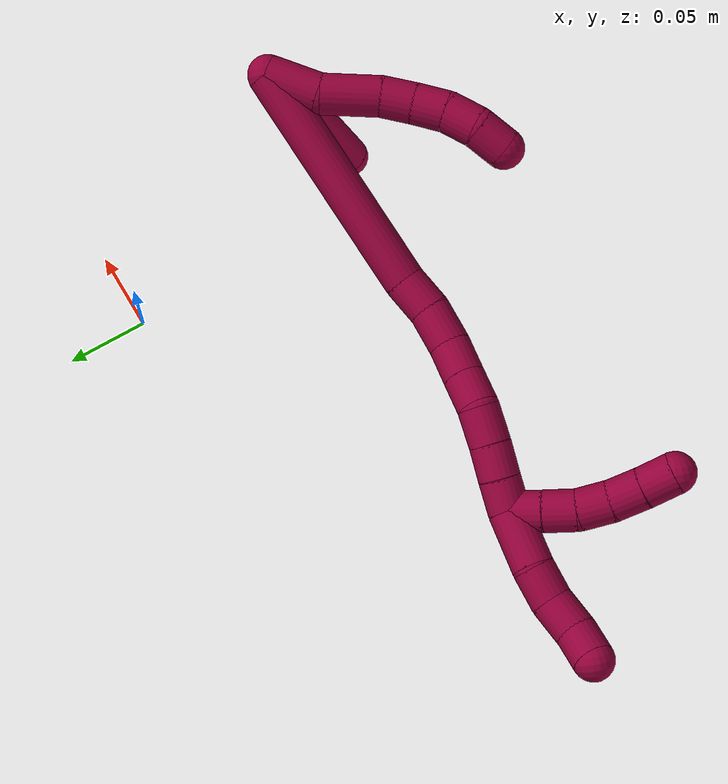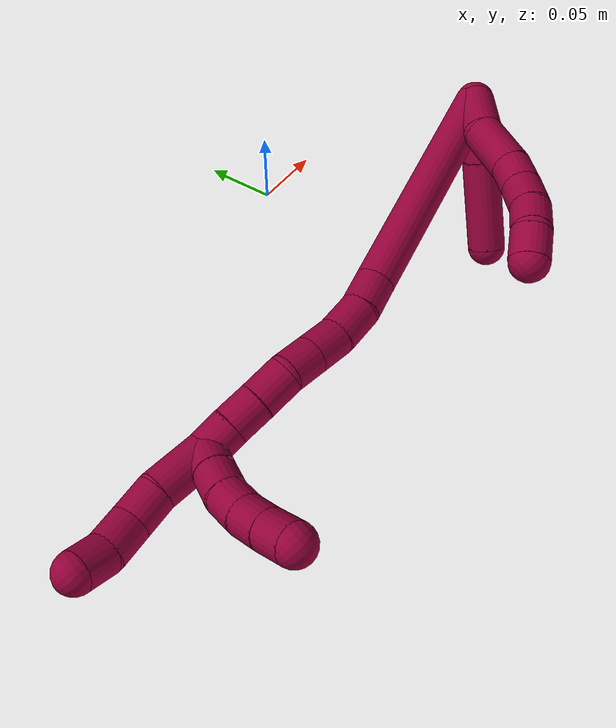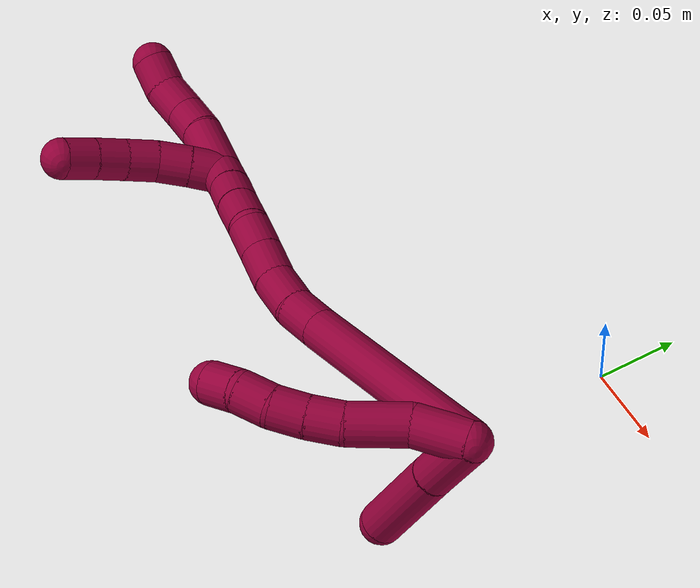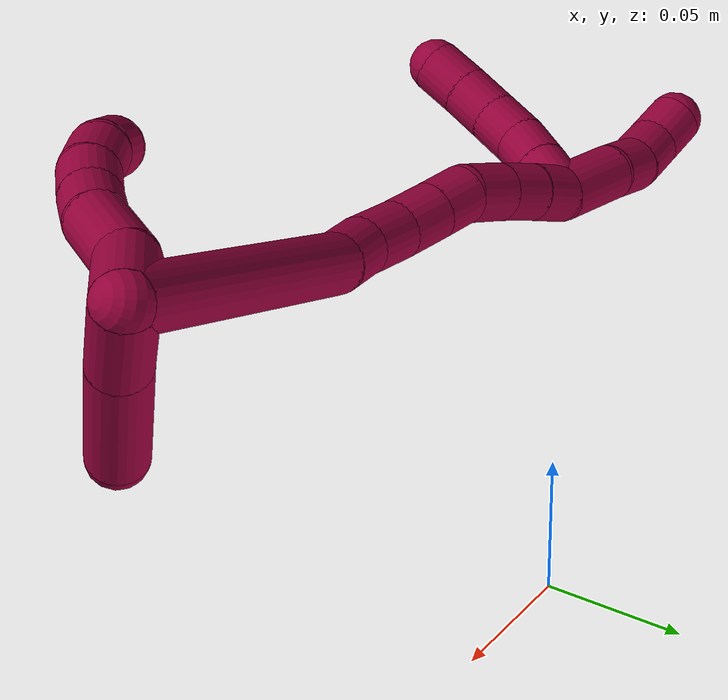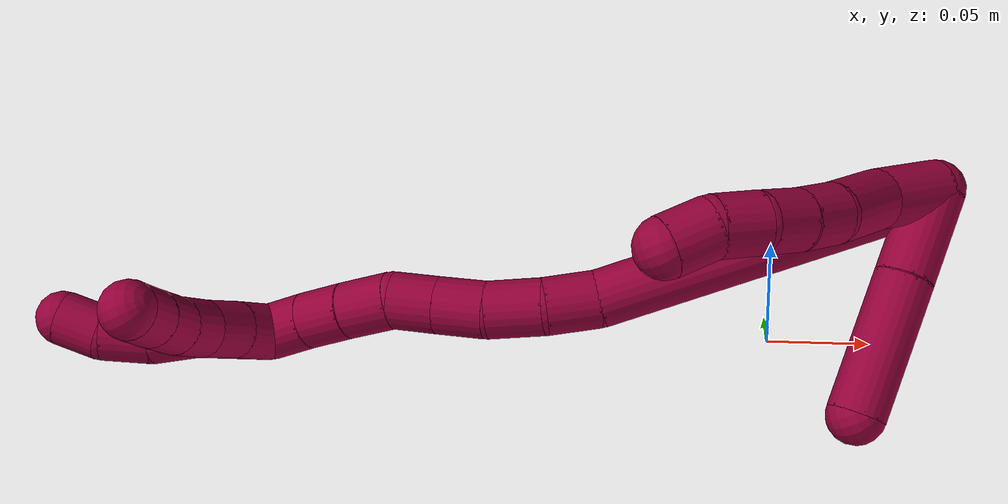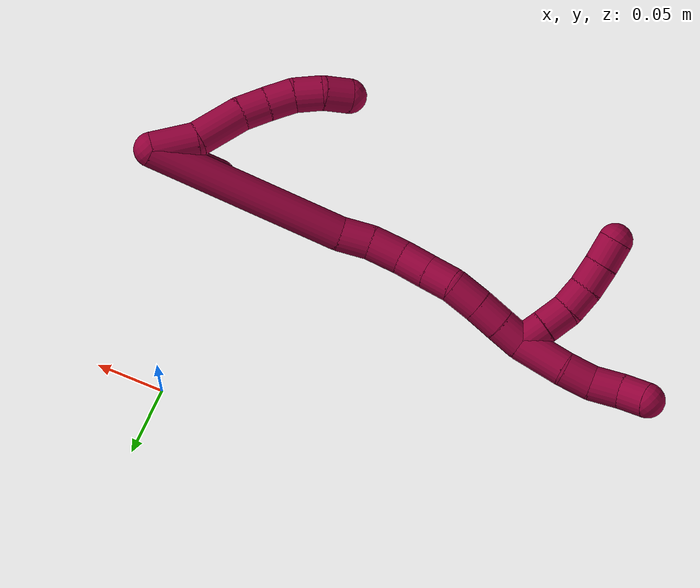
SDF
<sdf version="1.7">
 <world name="default">
  <model name="8">
   <static>0</static>
   <link name="8">
    <collision name="collision-cylinder-e_1_2_8">
     <pose>-0.011677 0.008012 0.008347 -0.764918 -0.790027 0.332339</pose>
     <geometry><cylinder><radius>0.0125</radius><length>0.032877</length></cylinder></geometry>
     <surface>
      <friction><ode><mu>1.16</mu><mu2>1.16</mu2><slip1>0</slip1><slip2>0</slip2></ode></friction>
      <contact><ode><kp>1e+06</kp><kd>1</kd><max_vel>0</max_vel><min_depth>0.001</min_depth></ode></contact>
     </surface>
    </collision>
    <visual name="visual-cylinder-e_1_2_8">
     <pose>-0.011677 0.008012 0.008347 -0.764918 -0.790027 0.332339</pose>
     <geometry><cylinder><radius>0.0125</radius><length>0.032877</length></cylinder></geometry>
     <material><ambient>0.584314 0 0.227451 1</ambient></material>
    </visual>
    <collision name="collision-cylinder-e_2_8_9">
     <pose>-0.036307 0.028123 0.020817 -1.24234 -0.79199 0.581467</pose>
     <geometry><cylinder><radius>0.0125</radius><length>0.036396</length></cylinder></geometry>
     <surface>
      <friction><ode><mu>1.16</mu><mu2>1.16</mu2><slip1>0</slip1><slip2>0</slip2></ode></friction>
      <contact><ode><kp>1e+06</kp><kd>1</kd><max_vel>0</max_vel><min_depth>0.001</min_depth></ode></contact>
     </surface>
    </collision>
    <visual name="visual-cylinder-e_2_8_9">
     <pose>-0.036307 0.028123 0.020817 -1.24234 -0.79199 0.581467</pose>
     <geometry><cylinder><radius>0.0125</radius><length>0.036396</length></cylinder></geometry>
     <material><ambient>0.584314 0 0.227451 1</ambient></material>
    </visual>
    <collision name="collision-cylinder-e_3_9_10">
     <pose>-0.056697 0.045825 0.028883 -0.957678 -0.826406 0.447599</pose>
     <geometry><cylinder><radius>0.0125</radius><length>0.020223</length></cylinder></geometry>
     <surface>
      <friction><ode><mu>1.16</mu><mu2>1.16</mu2><slip1>0</slip1><slip2>0</slip2></ode></friction>
      <contact><ode><kp>1e+06</kp><kd>1</kd><max_vel>0</max_vel><min_depth>0.001</min_depth></ode></contact>
     </surface>
    </collision>
    <visual name="visual-cylinder-e_3_9_10">
     <pose>-0.056697 0.045825 0.028883 -0.957678 -0.826406 0.447599</pose>
     <geometry><cylinder><radius>0.0125</radius><length>0.020223</length></cylinder></geometry>
     <material><ambient>0.584314 0 0.227451 1</ambient></material>
    </visual>
    <collision name="collision-cylinder-e_4_10_11">
     <pose>-0.071959 0.056233 0.037096 -0.84408 -0.883062 0.418256</pose>
     <geometry><cylinder><radius>0.0125</radius><length>0.020256</length></cylinder></geometry>
     <surface>
      <friction><ode><mu>1.16</mu><mu2>1.16</mu2><slip1>0</slip1><slip2>0</slip2></ode></friction>
      <contact><ode><kp>1e+06</kp><kd>1</kd><max_vel>0</max_vel><min_depth>0.001</min_depth></ode></contact>
     </surface>
    </collision>
    <visual name="visual-cylinder-e_4_10_11">
     <pose>-0.071959 0.056233 0.037096 -0.84408 -0.883062 0.418256</pose>
     <geometry><cylinder><radius>0.0125</radius><length>0.020256</length></cylinder></geometry>
     <material><ambient>0.584314 0 0.227451 1</ambient></material>
    </visual>
    <collision name="collision-cylinder-e_5_11_12">
     <pose>-0.086881 0.064704 0.047573 -0.533666 -0.777691 0.223058</pose>
     <geometry><cylinder><radius>0.0125</radius><length>0.020229</length></cylinder></geometry>
     <surface>
      <friction><ode><mu>1.16</mu><mu2>1.16</mu2><slip1>0</slip1><slip2>0</slip2></ode></friction>
      <contact><ode><kp>1e+06</kp><kd>1</kd><max_vel>0</max_vel><min_depth>0.001</min_depth></ode></contact>
     </surface>
    </collision>
    <visual name="visual-cylinder-e_5_11_12">
     <pose>-0.086881 0.064704 0.047573 -0.533666 -0.777691 0.223058</pose>
     <geometry><cylinder><radius>0.0125</radius><length>0.020229</length></cylinder></geometry>
     <material><ambient>0.584314 0 0.227451 1</ambient></material>
    </visual>
    <collision name="collision-cylinder-e_6_12_6">
     <pose>-0.098391 0.073328 0.06127 -0.584597 -0.456536 0.139589</pose>
     <geometry><cylinder><radius>0.0125</radius><length>0.02002</length></cylinder></geometry>
     <surface>
      <friction><ode><mu>1.16</mu><mu2>1.16</mu2><slip1>0</slip1><slip2>0</slip2></ode></friction>
      <contact><ode><kp>1e+06</kp><kd>1</kd><max_vel>0</max_vel><min_depth>0.001</min_depth></ode></contact>
     </surface>
    </collision>
    <visual name="visual-cylinder-e_6_12_6">
     <pose>-0.098391 0.073328 0.06127 -0.584597 -0.456536 0.139589</pose>
     <geometry><cylinder><radius>0.0125</radius><length>0.02002</length></cylinder></geometry>
     <material><ambient>0.584314 0 0.227451 1</ambient></material>
    </visual>
    <collision name="collision-cylinder-e_1_2_13">
     <pose>0.004259 0.016374 0.010361 -1.00661 0.216376 -0.119461</pose>
     <geometry><cylinder><radius>0.0125</radius><length>0.039678</length></cylinder></geometry>
     <surface>
      <friction><ode><mu>1.16</mu><mu2>1.16</mu2><slip1>0</slip1><slip2>0</slip2></ode></friction>
      <contact><ode><kp>1e+06</kp><kd>1</kd><max_vel>0</max_vel><min_depth>0.001</min_depth></ode></contact>
     </surface>
    </collision>
    <visual name="visual-cylinder-e_1_2_13">
     <pose>0.004259 0.016374 0.010361 -1.00661 0.216376 -0.119461</pose>
     <geometry><cylinder><radius>0.0125</radius><length>0.039678</length></cylinder></geometry>
     <material><ambient>0.584314 0 0.227451 1</ambient></material>
    </visual>
    <collision name="collision-cylinder-e_2_13_5">
     <pose>0.016115 0.056956 0.037029 -0.978033 0.254592 -0.136002</pose>
     <geometry><cylinder><radius>0.0125</radius><length>0.060322</length></cylinder></geometry>
     <surface>
      <friction><ode><mu>1.16</mu><mu2>1.16</mu2><slip1>0</slip1><slip2>0</slip2></ode></friction>
      <contact><ode><kp>1e+06</kp><kd>1</kd><max_vel>0</max_vel><min_depth>0.001</min_depth></ode></contact>
     </surface>
    </collision>
    <visual name="visual-cylinder-e_2_13_5">
     <pose>0.016115 0.056956 0.037029 -0.978033 0.254592 -0.136002</pose>
     <geometry><cylinder><radius>0.0125</radius><length>0.060322</length></cylinder></geometry>
     <material><ambient>0.584314 0 0.227451 1</ambient></material>
    </visual>
    <collision name="collision-cylinder-e_1_2_14">
     <pose>-0.022773 0.017297 0.067547 -0.250681 -0.315677 0.040104</pose>
     <geometry><cylinder><radius>0.0125</radius><length>0.146703</length></cylinder></geometry>
     <surface>
      <friction><ode><mu>1.16</mu><mu2>1.16</mu2><slip1>0</slip1><slip2>0</slip2></ode></friction>
      <contact><ode><kp>1e+06</kp><kd>1</kd><max_vel>0</max_vel><min_depth>0.001</min_depth></ode></contact>
     </surface>
    </collision>
    <visual name="visual-cylinder-e_1_2_14">
     <pose>-0.022773 0.017297 0.067547 -0.250681 -0.315677 0.040104</pose>
     <geometry><cylinder><radius>0.0125</radius><length>0.146703</length></cylinder></geometry>
     <material><ambient>0.584314 0 0.227451 1</ambient></material>
    </visual>
    <collision name="collision-cylinder-e_2_14_15">
     <pose>-0.051321 0.036707 0.14488 -0.212696 -0.523275 0.057155</pose>
     <geometry><cylinder><radius>0.0125</radius><length>0.023115</length></cylinder></geometry>
     <surface>
      <friction><ode><mu>1.16</mu><mu2>1.16</mu2><slip1>0</slip1><slip2>0</slip2></ode></friction>
      <contact><ode><kp>1e+06</kp><kd>1</kd><max_vel>0</max_vel><min_depth>0.001</min_depth></ode></contact>
     </surface>
    </collision>
    <visual name="visual-cylinder-e_2_14_15">
     <pose>-0.051321 0.036707 0.14488 -0.212696 -0.523275 0.057155</pose>
     <geometry><cylinder><radius>0.0125</radius><length>0.023115</length></cylinder></geometry>
     <material><ambient>0.584314 0 0.227451 1</ambient></material>
    </visual>
    <collision name="collision-cylinder-e_3_15_16">
     <pose>-0.062317 0.03884 0.165839 -0.001767 -0.437071 0.000392</pose>
     <geometry><cylinder><radius>0.0125</radius><length>0.024664</length></cylinder></geometry>
     <surface>
      <friction><ode><mu>1.16</mu><mu2>1.16</mu2><slip1>0</slip1><slip2>0</slip2></ode></friction>
      <contact><ode><kp>1e+06</kp><kd>1</kd><max_vel>0</max_vel><min_depth>0.001</min_depth></ode></contact>
     </surface>
    </collision>
    <visual name="visual-cylinder-e_3_15_16">
     <pose>-0.062317 0.03884 0.165839 -0.001767 -0.437071 0.000392</pose>
     <geometry><cylinder><radius>0.0125</radius><length>0.024664</length></cylinder></geometry>
     <material><ambient>0.584314 0 0.227451 1</ambient></material>
    </visual>
    <collision name="collision-cylinder-e_4_16_17">
     <pose>-0.072419 0.036958 0.186598 0.195851 -0.463316 -0.04634</pose>
     <geometry><cylinder><radius>0.0125</radius><length>0.021849</length></cylinder></geometry>
     <surface>
      <friction><ode><mu>1.16</mu><mu2>1.16</mu2><slip1>0</slip1><slip2>0</slip2></ode></friction>
      <contact><ode><kp>1e+06</kp><kd>1</kd><max_vel>0</max_vel><min_depth>0.001</min_depth></ode></contact>
     </surface>
    </collision>
    <visual name="visual-cylinder-e_4_16_17">
     <pose>-0.072419 0.036958 0.186598 0.195851 -0.463316 -0.04634</pose>
     <geometry><cylinder><radius>0.0125</radius><length>0.021849</length></cylinder></geometry>
     <material><ambient>0.584314 0 0.227451 1</ambient></material>
    </visual>
    <collision name="collision-cylinder-e_5_17_18">
     <pose>-0.081998 0.033266 0.205088 0.198312 -0.477187 -0.048384</pose>
     <geometry><cylinder><radius>0.0125</radius><length>0.020449</length></cylinder></geometry>
     <surface>
      <friction><ode><mu>1.16</mu><mu2>1.16</mu2><slip1>0</slip1><slip2>0</slip2></ode></friction>
      <contact><ode><kp>1e+06</kp><kd>1</kd><max_vel>0</max_vel><min_depth>0.001</min_depth></ode></contact>
     </surface>
    </collision>
    <visual name="visual-cylinder-e_5_17_18">
     <pose>-0.081998 0.033266 0.205088 0.198312 -0.477187 -0.048384</pose>
     <geometry><cylinder><radius>0.0125</radius><length>0.020449</length></cylinder></geometry>
     <material><ambient>0.584314 0 0.227451 1</ambient></material>
    </visual>
    <collision name="collision-cylinder-e_6_18_19">
     <pose>-0.088798 0.031234 0.225133 0.021859 -0.186688 -0.002046</pose>
     <geometry><cylinder><radius>0.0125</radius><length>0.022681</length></cylinder></geometry>
     <surface>
      <friction><ode><mu>1.16</mu><mu2>1.16</mu2><slip1>0</slip1><slip2>0</slip2></ode></friction>
      <contact><ode><kp>1e+06</kp><kd>1</kd><max_vel>0</max_vel><min_depth>0.001</min_depth></ode></contact>
     </surface>
    </collision>
    <visual name="visual-cylinder-e_6_18_19">
     <pose>-0.088798 0.031234 0.225133 0.021859 -0.186688 -0.002046</pose>
     <geometry><cylinder><radius>0.0125</radius><length>0.022681</length></cylinder></geometry>
     <material><ambient>0.584314 0 0.227451 1</ambient></material>
    </visual>
    <collision name="collision-cylinder-e_7_19_20">
     <pose>-0.092318 0.030654 0.24642 0.033097 -0.138499 -0.002296</pose>
     <geometry><cylinder><radius>0.0125</radius><length>0.020498</length></cylinder></geometry>
     <surface>
      <friction><ode><mu>1.16</mu><mu2>1.16</mu2><slip1>0</slip1><slip2>0</slip2></ode></friction>
      <contact><ode><kp>1e+06</kp><kd>1</kd><max_vel>0</max_vel><min_depth>0.001</min_depth></ode></contact>
     </surface>
    </collision>
    <visual name="visual-cylinder-e_7_19_20">
     <pose>-0.092318 0.030654 0.24642 0.033097 -0.138499 -0.002296</pose>
     <geometry><cylinder><radius>0.0125</radius><length>0.020498</length></cylinder></geometry>
     <material><ambient>0.584314 0 0.227451 1</ambient></material>
    </visual>
    <collision name="collision-cylinder-e_8_20_1">
     <pose>-0.094985 0.030416 0.266506 -0.009849 -0.125291 0.000618</pose>
     <geometry><cylinder><radius>0.0125</radius><length>0.02004</length></cylinder></geometry>
     <surface>
      <friction><ode><mu>1.16</mu><mu2>1.16</mu2><slip1>0</slip1><slip2>0</slip2></ode></friction>
      <contact><ode><kp>1e+06</kp><kd>1</kd><max_vel>0</max_vel><min_depth>0.001</min_depth></ode></contact>
     </surface>
    </collision>
    <visual name="visual-cylinder-e_8_20_1">
     <pose>-0.094985 0.030416 0.266506 -0.009849 -0.125291 0.000618</pose>
     <geometry><cylinder><radius>0.0125</radius><length>0.02004</length></cylinder></geometry>
     <material><ambient>0.584314 0 0.227451 1</ambient></material>
    </visual>
    <collision name="collision-cylinder-e_1_1_21">
     <pose>-0.103155 0.028237 0.292636 0.139733 -0.400293 -0.028391</pose>
     <geometry><cylinder><radius>0.0125</radius><length>0.035503</length></cylinder></geometry>
     <surface>
      <friction><ode><mu>1.16</mu><mu2>1.16</mu2><slip1>0</slip1><slip2>0</slip2></ode></friction>
      <contact><ode><kp>1e+06</kp><kd>1</kd><max_vel>0</max_vel><min_depth>0.001</min_depth></ode></contact>
     </surface>
    </collision>
    <visual name="visual-cylinder-e_1_1_21">
     <pose>-0.103155 0.028237 0.292636 0.139733 -0.400293 -0.028391</pose>
     <geometry><cylinder><radius>0.0125</radius><length>0.035503</length></cylinder></geometry>
     <material><ambient>0.584314 0 0.227451 1</ambient></material>
    </visual>
    <collision name="collision-cylinder-e_2_21_22">
     <pose>-0.114039 0.026534 0.318911 -0.056803 -0.374079 0.010753</pose>
     <geometry><cylinder><radius>0.0125</radius><length>0.021707</length></cylinder></geometry>
     <surface>
      <friction><ode><mu>1.16</mu><mu2>1.16</mu2><slip1>0</slip1><slip2>0</slip2></ode></friction>
      <contact><ode><kp>1e+06</kp><kd>1</kd><max_vel>0</max_vel><min_depth>0.001</min_depth></ode></contact>
     </surface>
    </collision>
    <visual name="visual-cylinder-e_2_21_22">
     <pose>-0.114039 0.026534 0.318911 -0.056803 -0.374079 0.010753</pose>
     <geometry><cylinder><radius>0.0125</radius><length>0.021707</length></cylinder></geometry>
     <material><ambient>0.584314 0 0.227451 1</ambient></material>
    </visual>
    <collision name="collision-cylinder-e_3_22_23">
     <pose>-0.124799 0.02713 0.338028 -0.002538 -0.645072 0.000848</pose>
     <geometry><cylinder><radius>0.0125</radius><length>0.022601</length></cylinder></geometry>
     <surface>
      <friction><ode><mu>1.16</mu><mu2>1.16</mu2><slip1>0</slip1><slip2>0</slip2></ode></friction>
      <contact><ode><kp>1e+06</kp><kd>1</kd><max_vel>0</max_vel><min_depth>0.001</min_depth></ode></contact>
     </surface>
    </collision>
    <visual name="visual-cylinder-e_3_22_23">
     <pose>-0.124799 0.02713 0.338028 -0.002538 -0.645072 0.000848</pose>
     <geometry><cylinder><radius>0.0125</radius><length>0.022601</length></cylinder></geometry>
     <material><ambient>0.584314 0 0.227451 1</ambient></material>
    </visual>
    <collision name="collision-cylinder-e_4_23_4">
     <pose>-0.138131 0.024363 0.354225 0.371273 -0.704491 -0.137842</pose>
     <geometry><cylinder><radius>0.0125</radius><length>0.020188</length></cylinder></geometry>
     <surface>
      <friction><ode><mu>1.16</mu><mu2>1.16</mu2><slip1>0</slip1><slip2>0</slip2></ode></friction>
      <contact><ode><kp>1e+06</kp><kd>1</kd><max_vel>0</max_vel><min_depth>0.001</min_depth></ode></contact>
     </surface>
    </collision>
    <visual name="visual-cylinder-e_4_23_4">
     <pose>-0.138131 0.024363 0.354225 0.371273 -0.704491 -0.137842</pose>
     <geometry><cylinder><radius>0.0125</radius><length>0.020188</length></cylinder></geometry>
     <material><ambient>0.584314 0 0.227451 1</ambient></material>
    </visual>
    <collision name="collision-cylinder-e_1_1_24">
     <pose>-0.104928 0.035276 0.277784 -1.29696 -1.05335 0.830082</pose>
     <geometry><cylinder><radius>0.0125</radius><length>0.02</length></cylinder></geometry>
     <surface>
      <friction><ode><mu>1.16</mu><mu2>1.16</mu2><slip1>0</slip1><slip2>0</slip2></ode></friction>
      <contact><ode><kp>1e+06</kp><kd>1</kd><max_vel>0</max_vel><min_depth>0.001</min_depth></ode></contact>
     </surface>
    </collision>
    <visual name="visual-cylinder-e_1_1_24">
     <pose>-0.104928 0.035276 0.277784 -1.29696 -1.05335 0.830082</pose>
     <geometry><cylinder><radius>0.0125</radius><length>0.02</length></cylinder></geometry>
     <material><ambient>0.584314 0 0.227451 1</ambient></material>
    </visual>
    <collision name="collision-cylinder-e_2_24_25">
     <pose>-0.122134 0.045157 0.280258 -1.35233 -1.0189 0.84274</pose>
     <geometry><cylinder><radius>0.0125</radius><length>0.02</length></cylinder></geometry>
     <surface>
      <friction><ode><mu>1.16</mu><mu2>1.16</mu2><slip1>0</slip1><slip2>0</slip2></ode></friction>
      <contact><ode><kp>1e+06</kp><kd>1</kd><max_vel>0</max_vel><min_depth>0.001</min_depth></ode></contact>
     </surface>
    </collision>
    <visual name="visual-cylinder-e_2_24_25">
     <pose>-0.122134 0.045157 0.280258 -1.35233 -1.0189 0.84274</pose>
     <geometry><cylinder><radius>0.0125</radius><length>0.02</length></cylinder></geometry>
     <material><ambient>0.584314 0 0.227451 1</ambient></material>
    </visual>
    <collision name="collision-cylinder-e_3_25_26">
     <pose>-0.139005 0.055669 0.280341 -1.76377 -0.988995 1.15939</pose>
     <geometry><cylinder><radius>0.0125</radius><length>0.02</length></cylinder></geometry>
     <surface>
      <friction><ode><mu>1.16</mu><mu2>1.16</mu2><slip1>0</slip1><slip2>0</slip2></ode></friction>
      <contact><ode><kp>1e+06</kp><kd>1</kd><max_vel>0</max_vel><min_depth>0.001</min_depth></ode></contact>
     </surface>
    </collision>
    <visual name="visual-cylinder-e_3_25_26">
     <pose>-0.139005 0.055669 0.280341 -1.76377 -0.988995 1.15939</pose>
     <geometry><cylinder><radius>0.0125</radius><length>0.02</length></cylinder></geometry>
     <material><ambient>0.584314 0 0.227451 1</ambient></material>
    </visual>
    <collision name="collision-cylinder-e_4_26_27">
     <pose>-0.155775 0.065893 0.276872 -2.03436 -1.00019 1.44786</pose>
     <geometry><cylinder><radius>0.0125</radius><length>0.02</length></cylinder></geometry>
     <surface>
      <friction><ode><mu>1.16</mu><mu2>1.16</mu2><slip1>0</slip1><slip2>0</slip2></ode></friction>
      <contact><ode><kp>1e+06</kp><kd>1</kd><max_vel>0</max_vel><min_depth>0.001</min_depth></ode></contact>
     </surface>
    </collision>
    <visual name="visual-cylinder-e_4_26_27">
     <pose>-0.155775 0.065893 0.276872 -2.03436 -1.00019 1.44786</pose>
     <geometry><cylinder><radius>0.0125</radius><length>0.02</length></cylinder></geometry>
     <material><ambient>0.584314 0 0.227451 1</ambient></material>
    </visual>
    <collision name="collision-cylinder-e_5_27_3">
     <pose>-0.172435 0.075582 0.27155 -2.1101 -0.969114 1.49673</pose>
     <geometry><cylinder><radius>0.0125</radius><length>0.02</length></cylinder></geometry>
     <surface>
      <friction><ode><mu>1.16</mu><mu2>1.16</mu2><slip1>0</slip1><slip2>0</slip2></ode></friction>
      <contact><ode><kp>1e+06</kp><kd>1</kd><max_vel>0</max_vel><min_depth>0.001</min_depth></ode></contact>
     </surface>
    </collision>
    <visual name="visual-cylinder-e_5_27_3">
     <pose>-0.172435 0.075582 0.27155 -2.1101 -0.969114 1.49673</pose>
     <geometry><cylinder><radius>0.0125</radius><length>0.02</length></cylinder></geometry>
     <material><ambient>0.584314 0 0.227451 1</ambient></material>
    </visual>
    <collision name="collision-sphere-3">
     <pose>-0.180678 0.080439 0.268643 0 -0 0</pose>
     <geometry><sphere><radius>0.0125</radius></sphere></geometry>
     <surface>
      <friction><ode><mu>1.16</mu><mu2>1.16</mu2><slip1>0</slip1><slip2>0</slip2></ode></friction>
      <contact><ode><kp>1e+06</kp><kd>1</kd><max_vel>0</max_vel><min_depth>0.001</min_depth></ode></contact>
     </surface>
    </collision>
    <visual name="visual-sphere-3">
     <pose>-0.180678 0.080439 0.268643 0 -0 0</pose>
     <geometry><sphere><radius>0.0125</radius></sphere></geometry>
     <material><ambient>0.584314 0 0.227451 1</ambient></material>
    </visual>
    <collision name="collision-sphere-27">
     <pose>-0.164191 0.070725 0.274457 0 -0 0</pose>
     <geometry><sphere><radius>0.0125</radius></sphere></geometry>
     <surface>
      <friction><ode><mu>1.16</mu><mu2>1.16</mu2><slip1>0</slip1><slip2>0</slip2></ode></friction>
      <contact><ode><kp>1e+06</kp><kd>1</kd><max_vel>0</max_vel><min_depth>0.001</min_depth></ode></contact>
     </surface>
    </collision>
    <visual name="visual-sphere-27">
     <pose>-0.164191 0.070725 0.274457 0 -0 0</pose>
     <geometry><sphere><radius>0.0125</radius></sphere></geometry>
     <material><ambient>0.584314 0 0.227451 1</ambient></material>
    </visual>
    <collision name="collision-sphere-26">
     <pose>-0.147359 0.061062 0.279287 0 -0 0</pose>
     <geometry><sphere><radius>0.0125</radius></sphere></geometry>
     <surface>
      <friction><ode><mu>1.16</mu><mu2>1.16</mu2><slip1>0</slip1><slip2>0</slip2></ode></friction>
      <contact><ode><kp>1e+06</kp><kd>1</kd><max_vel>0</max_vel><min_depth>0.001</min_depth></ode></contact>
     </surface>
    </collision>
    <visual name="visual-sphere-26">
     <pose>-0.147359 0.061062 0.279287 0 -0 0</pose>
     <geometry><sphere><radius>0.0125</radius></sphere></geometry>
     <material><ambient>0.584314 0 0.227451 1</ambient></material>
    </visual>
    <collision name="collision-sphere-25">
     <pose>-0.13065 0.050275 0.281395 0 -0 0</pose>
     <geometry><sphere><radius>0.0125</radius></sphere></geometry>
     <surface>
      <friction><ode><mu>1.16</mu><mu2>1.16</mu2><slip1>0</slip1><slip2>0</slip2></ode></friction>
      <contact><ode><kp>1e+06</kp><kd>1</kd><max_vel>0</max_vel><min_depth>0.001</min_depth></ode></contact>
     </surface>
    </collision>
    <visual name="visual-sphere-25">
     <pose>-0.13065 0.050275 0.281395 0 -0 0</pose>
     <geometry><sphere><radius>0.0125</radius></sphere></geometry>
     <material><ambient>0.584314 0 0.227451 1</ambient></material>
    </visual>
    <collision name="collision-sphere-24">
     <pose>-0.113619 0.040039 0.279122 0 -0 0</pose>
     <geometry><sphere><radius>0.0125</radius></sphere></geometry>
     <surface>
      <friction><ode><mu>1.16</mu><mu2>1.16</mu2><slip1>0</slip1><slip2>0</slip2></ode></friction>
      <contact><ode><kp>1e+06</kp><kd>1</kd><max_vel>0</max_vel><min_depth>0.001</min_depth></ode></contact>
     </surface>
    </collision>
    <visual name="visual-sphere-24">
     <pose>-0.113619 0.040039 0.279122 0 -0 0</pose>
     <geometry><sphere><radius>0.0125</radius></sphere></geometry>
     <material><ambient>0.584314 0 0.227451 1</ambient></material>
    </visual>
    <collision name="collision-sphere-4">
     <pose>-0.144669 0.021572 0.361392 0 -0 0</pose>
     <geometry><sphere><radius>0.0125</radius></sphere></geometry>
     <surface>
      <friction><ode><mu>1.16</mu><mu2>1.16</mu2><slip1>0</slip1><slip2>0</slip2></ode></friction>
      <contact><ode><kp>1e+06</kp><kd>1</kd><max_vel>0</max_vel><min_depth>0.001</min_depth></ode></contact>
     </surface>
    </collision>
    <visual name="visual-sphere-4">
     <pose>-0.144669 0.021572 0.361392 0 -0 0</pose>
     <geometry><sphere><radius>0.0125</radius></sphere></geometry>
     <material><ambient>0.584314 0 0.227451 1</ambient></material>
    </visual>
    <collision name="collision-sphere-23">
     <pose>-0.131594 0.027153 0.347058 0 -0 0</pose>
     <geometry><sphere><radius>0.0125</radius></sphere></geometry>
     <surface>
      <friction><ode><mu>1.16</mu><mu2>1.16</mu2><slip1>0</slip1><slip2>0</slip2></ode></friction>
      <contact><ode><kp>1e+06</kp><kd>1</kd><max_vel>0</max_vel><min_depth>0.001</min_depth></ode></contact>
     </surface>
    </collision>
    <visual name="visual-sphere-23">
     <pose>-0.131594 0.027153 0.347058 0 -0 0</pose>
     <geometry><sphere><radius>0.0125</radius></sphere></geometry>
     <material><ambient>0.584314 0 0.227451 1</ambient></material>
    </visual>
    <collision name="collision-sphere-22">
     <pose>-0.118005 0.027107 0.328998 0 -0 0</pose>
     <geometry><sphere><radius>0.0125</radius></sphere></geometry>
     <surface>
      <friction><ode><mu>1.16</mu><mu2>1.16</mu2><slip1>0</slip1><slip2>0</slip2></ode></friction>
      <contact><ode><kp>1e+06</kp><kd>1</kd><max_vel>0</max_vel><min_depth>0.001</min_depth></ode></contact>
     </surface>
    </collision>
    <visual name="visual-sphere-22">
     <pose>-0.118005 0.027107 0.328998 0 -0 0</pose>
     <geometry><sphere><radius>0.0125</radius></sphere></geometry>
     <material><ambient>0.584314 0 0.227451 1</ambient></material>
    </visual>
    <collision name="collision-sphere-21">
     <pose>-0.110073 0.02596 0.308825 0 -0 0</pose>
     <geometry><sphere><radius>0.0125</radius></sphere></geometry>
     <surface>
      <friction><ode><mu>1.16</mu><mu2>1.16</mu2><slip1>0</slip1><slip2>0</slip2></ode></friction>
      <contact><ode><kp>1e+06</kp><kd>1</kd><max_vel>0</max_vel><min_depth>0.001</min_depth></ode></contact>
     </surface>
    </collision>
    <visual name="visual-sphere-21">
     <pose>-0.110073 0.02596 0.308825 0 -0 0</pose>
     <geometry><sphere><radius>0.0125</radius></sphere></geometry>
     <material><ambient>0.584314 0 0.227451 1</ambient></material>
    </visual>
    <collision name="collision-sphere-1">
     <pose>-0.096237 0.030514 0.276447 0 -0 0</pose>
     <geometry><sphere><radius>0.0125</radius></sphere></geometry>
     <surface>
      <friction><ode><mu>1.16</mu><mu2>1.16</mu2><slip1>0</slip1><slip2>0</slip2></ode></friction>
      <contact><ode><kp>1e+06</kp><kd>1</kd><max_vel>0</max_vel><min_depth>0.001</min_depth></ode></contact>
     </surface>
    </collision>
    <visual name="visual-sphere-1">
     <pose>-0.096237 0.030514 0.276447 0 -0 0</pose>
     <geometry><sphere><radius>0.0125</radius></sphere></geometry>
     <material><ambient>0.584314 0 0.227451 1</ambient></material>
    </visual>
    <collision name="collision-sphere-12">
     <pose>-0.093978 0.06837 0.053777 0 -0 0</pose>
     <geometry><sphere><radius>0.0125</radius></sphere></geometry>
     <surface>
      <friction><ode><mu>1.16</mu><mu2>1.16</mu2><slip1>0</slip1><slip2>0</slip2></ode></friction>
      <contact><ode><kp>1e+06</kp><kd>1</kd><max_vel>0</max_vel><min_depth>0.001</min_depth></ode></contact>
     </surface>
    </collision>
    <visual name="visual-sphere-12">
     <pose>-0.093978 0.06837 0.053777 0 -0 0</pose>
     <geometry><sphere><radius>0.0125</radius></sphere></geometry>
     <material><ambient>0.584314 0 0.227451 1</ambient></material>
    </visual>
    <collision name="collision-sphere-11">
     <pose>-0.079785 0.061038 0.041368 0 -0 0</pose>
     <geometry><sphere><radius>0.0125</radius></sphere></geometry>
     <surface>
      <friction><ode><mu>1.16</mu><mu2>1.16</mu2><slip1>0</slip1><slip2>0</slip2></ode></friction>
      <contact><ode><kp>1e+06</kp><kd>1</kd><max_vel>0</max_vel><min_depth>0.001</min_depth></ode></contact>
     </surface>
    </collision>
    <visual name="visual-sphere-11">
     <pose>-0.079785 0.061038 0.041368 0 -0 0</pose>
     <geometry><sphere><radius>0.0125</radius></sphere></geometry>
     <material><ambient>0.584314 0 0.227451 1</ambient></material>
    </visual>
    <collision name="collision-sphere-10">
     <pose>-0.064134 0.051428 0.032825 0 -0 0</pose>
     <geometry><sphere><radius>0.0125</radius></sphere></geometry>
     <surface>
      <friction><ode><mu>1.16</mu><mu2>1.16</mu2><slip1>0</slip1><slip2>0</slip2></ode></friction>
      <contact><ode><kp>1e+06</kp><kd>1</kd><max_vel>0</max_vel><min_depth>0.001</min_depth></ode></contact>
     </surface>
    </collision>
    <visual name="visual-sphere-10">
     <pose>-0.064134 0.051428 0.032825 0 -0 0</pose>
     <geometry><sphere><radius>0.0125</radius></sphere></geometry>
     <material><ambient>0.584314 0 0.227451 1</ambient></material>
    </visual>
    <collision name="collision-sphere-9">
     <pose>-0.04926 0.040222 0.024941 0 -0 0</pose>
     <geometry><sphere><radius>0.0125</radius></sphere></geometry>
     <surface>
      <friction><ode><mu>1.16</mu><mu2>1.16</mu2><slip1>0</slip1><slip2>0</slip2></ode></friction>
      <contact><ode><kp>1e+06</kp><kd>1</kd><max_vel>0</max_vel><min_depth>0.001</min_depth></ode></contact>
     </surface>
    </collision>
    <visual name="visual-sphere-9">
     <pose>-0.04926 0.040222 0.024941 0 -0 0</pose>
     <geometry><sphere><radius>0.0125</radius></sphere></geometry>
     <material><ambient>0.584314 0 0.227451 1</ambient></material>
    </visual>
    <collision name="collision-sphere-2">
     <geometry><sphere><radius>0.0125</radius></sphere></geometry>
     <surface>
      <friction><ode><mu>1.16</mu><mu2>1.16</mu2><slip1>0</slip1><slip2>0</slip2></ode></friction>
      <contact><ode><kp>1e+06</kp><kd>1</kd><max_vel>0</max_vel><min_depth>0.001</min_depth></ode></contact>
     </surface>
    </collision>
    <visual name="visual-sphere-2">
     <geometry><sphere><radius>0.0125</radius></sphere></geometry>
     <material><ambient>0.584314 0 0.227451 1</ambient></material>
    </visual>
    <collision name="collision-sphere-19">
     <pose>-0.090903 0.03099 0.236274 0 -0 0</pose>
     <geometry><sphere><radius>0.0125</radius></sphere></geometry>
     <surface>
      <friction><ode><mu>1.16</mu><mu2>1.16</mu2><slip1>0</slip1><slip2>0</slip2></ode></friction>
      <contact><ode><kp>1e+06</kp><kd>1</kd><max_vel>0</max_vel><min_depth>0.001</min_depth></ode></contact>
     </surface>
    </collision>
    <visual name="visual-sphere-19">
     <pose>-0.090903 0.03099 0.236274 0 -0 0</pose>
     <geometry><sphere><radius>0.0125</radius></sphere></geometry>
     <material><ambient>0.584314 0 0.227451 1</ambient></material>
    </visual>
    <collision name="collision-sphere-8">
     <pose>-0.023355 0.016024 0.016694 0 -0 0</pose>
     <geometry><sphere><radius>0.0125</radius></sphere></geometry>
     <surface>
      <friction><ode><mu>1.16</mu><mu2>1.16</mu2><slip1>0</slip1><slip2>0</slip2></ode></friction>
      <contact><ode><kp>1e+06</kp><kd>1</kd><max_vel>0</max_vel><min_depth>0.001</min_depth></ode></contact>
     </surface>
    </collision>
    <visual name="visual-sphere-8">
     <pose>-0.023355 0.016024 0.016694 0 -0 0</pose>
     <geometry><sphere><radius>0.0125</radius></sphere></geometry>
     <material><ambient>0.584314 0 0.227451 1</ambient></material>
    </visual>
    <collision name="collision-sphere-6">
     <pose>-0.102804 0.078287 0.068763 0 -0 0</pose>
     <geometry><sphere><radius>0.0125</radius></sphere></geometry>
     <surface>
      <friction><ode><mu>1.16</mu><mu2>1.16</mu2><slip1>0</slip1><slip2>0</slip2></ode></friction>
      <contact><ode><kp>1e+06</kp><kd>1</kd><max_vel>0</max_vel><min_depth>0.001</min_depth></ode></contact>
     </surface>
    </collision>
    <visual name="visual-sphere-6">
     <pose>-0.102804 0.078287 0.068763 0 -0 0</pose>
     <geometry><sphere><radius>0.0125</radius></sphere></geometry>
     <material><ambient>0.584314 0 0.227451 1</ambient></material>
    </visual>
    <collision name="collision-sphere-13">
     <pose>0.008519 0.032747 0.020722 0 -0 0</pose>
     <geometry><sphere><radius>0.0125</radius></sphere></geometry>
     <surface>
      <friction><ode><mu>1.16</mu><mu2>1.16</mu2><slip1>0</slip1><slip2>0</slip2></ode></friction>
      <contact><ode><kp>1e+06</kp><kd>1</kd><max_vel>0</max_vel><min_depth>0.001</min_depth></ode></contact>
     </surface>
    </collision>
    <visual name="visual-sphere-13">
     <pose>0.008519 0.032747 0.020722 0 -0 0</pose>
     <geometry><sphere><radius>0.0125</radius></sphere></geometry>
     <material><ambient>0.584314 0 0.227451 1</ambient></material>
    </visual>
    <collision name="collision-sphere-5">
     <pose>0.023711 0.081165 0.053335 0 -0 0</pose>
     <geometry><sphere><radius>0.0125</radius></sphere></geometry>
     <surface>
      <friction><ode><mu>1.16</mu><mu2>1.16</mu2><slip1>0</slip1><slip2>0</slip2></ode></friction>
      <contact><ode><kp>1e+06</kp><kd>1</kd><max_vel>0</max_vel><min_depth>0.001</min_depth></ode></contact>
     </surface>
    </collision>
    <visual name="visual-sphere-5">
     <pose>0.023711 0.081165 0.053335 0 -0 0</pose>
     <geometry><sphere><radius>0.0125</radius></sphere></geometry>
     <material><ambient>0.584314 0 0.227451 1</ambient></material>
    </visual>
    <collision name="collision-sphere-14">
     <pose>-0.045545 0.034593 0.135095 0 -0 0</pose>
     <geometry><sphere><radius>0.0125</radius></sphere></geometry>
     <surface>
      <friction><ode><mu>1.16</mu><mu2>1.16</mu2><slip1>0</slip1><slip2>0</slip2></ode></friction>
      <contact><ode><kp>1e+06</kp><kd>1</kd><max_vel>0</max_vel><min_depth>0.001</min_depth></ode></contact>
     </surface>
    </collision>
    <visual name="visual-sphere-14">
     <pose>-0.045545 0.034593 0.135095 0 -0 0</pose>
     <geometry><sphere><radius>0.0125</radius></sphere></geometry>
     <material><ambient>0.584314 0 0.227451 1</ambient></material>
    </visual>
    <collision name="collision-sphere-15">
     <pose>-0.057097 0.03882 0.154666 0 -0 0</pose>
     <geometry><sphere><radius>0.0125</radius></sphere></geometry>
     <surface>
      <friction><ode><mu>1.16</mu><mu2>1.16</mu2><slip1>0</slip1><slip2>0</slip2></ode></friction>
      <contact><ode><kp>1e+06</kp><kd>1</kd><max_vel>0</max_vel><min_depth>0.001</min_depth></ode></contact>
     </surface>
    </collision>
    <visual name="visual-sphere-15">
     <pose>-0.057097 0.03882 0.154666 0 -0 0</pose>
     <geometry><sphere><radius>0.0125</radius></sphere></geometry>
     <material><ambient>0.584314 0 0.227451 1</ambient></material>
    </visual>
    <collision name="collision-sphere-16">
     <pose>-0.067537 0.038859 0.177012 0 -0 0</pose>
     <geometry><sphere><radius>0.0125</radius></sphere></geometry>
     <surface>
      <friction><ode><mu>1.16</mu><mu2>1.16</mu2><slip1>0</slip1><slip2>0</slip2></ode></friction>
      <contact><ode><kp>1e+06</kp><kd>1</kd><max_vel>0</max_vel><min_depth>0.001</min_depth></ode></contact>
     </surface>
    </collision>
    <visual name="visual-sphere-16">
     <pose>-0.067537 0.038859 0.177012 0 -0 0</pose>
     <geometry><sphere><radius>0.0125</radius></sphere></geometry>
     <material><ambient>0.584314 0 0.227451 1</ambient></material>
    </visual>
    <collision name="collision-sphere-17">
     <pose>-0.077302 0.035056 0.196184 0 -0 0</pose>
     <geometry><sphere><radius>0.0125</radius></sphere></geometry>
     <surface>
      <friction><ode><mu>1.16</mu><mu2>1.16</mu2><slip1>0</slip1><slip2>0</slip2></ode></friction>
      <contact><ode><kp>1e+06</kp><kd>1</kd><max_vel>0</max_vel><min_depth>0.001</min_depth></ode></contact>
     </surface>
    </collision>
    <visual name="visual-sphere-17">
     <pose>-0.077302 0.035056 0.196184 0 -0 0</pose>
     <geometry><sphere><radius>0.0125</radius></sphere></geometry>
     <material><ambient>0.584314 0 0.227451 1</ambient></material>
    </visual>
    <collision name="collision-sphere-18">
     <pose>-0.086694 0.031477 0.213993 0 -0 0</pose>
     <geometry><sphere><radius>0.0125</radius></sphere></geometry>
     <surface>
      <friction><ode><mu>1.16</mu><mu2>1.16</mu2><slip1>0</slip1><slip2>0</slip2></ode></friction>
      <contact><ode><kp>1e+06</kp><kd>1</kd><max_vel>0</max_vel><min_depth>0.001</min_depth></ode></contact>
     </surface>
    </collision>
    <visual name="visual-sphere-18">
     <pose>-0.086694 0.031477 0.213993 0 -0 0</pose>
     <geometry><sphere><radius>0.0125</radius></sphere></geometry>
     <material><ambient>0.584314 0 0.227451 1</ambient></material>
    </visual>
    <collision name="collision-sphere-20">
     <pose>-0.093733 0.030318 0.256565 0 -0 0</pose>
     <geometry><sphere><radius>0.0125</radius></sphere></geometry>
     <surface>
      <friction><ode><mu>1.16</mu><mu2>1.16</mu2><slip1>0</slip1><slip2>0</slip2></ode></friction>
      <contact><ode><kp>1e+06</kp><kd>1</kd><max_vel>0</max_vel><min_depth>0.001</min_depth></ode></contact>
     </surface>
    </collision>
    <visual name="visual-sphere-20">
     <pose>-0.093733 0.030318 0.256565 0 -0 0</pose>
     <geometry><sphere><radius>0.0125</radius></sphere></geometry>
     <material><ambient>0.584314 0 0.227451 1</ambient></material>
    </visual>
    <inertial>
     <pose>-0.063549 0.034971 0.144211 0 -0 0</pose>
     <mass>0.75</mass>
     <inertia>
      <ixx>0.000304</ixx>
      <ixy>0</ixy>
      <ixz>0</ixz>
      <iyy>0.000348</iyy>
      <iyz>0</iyz>
      <izz>4.3e-05</izz>
     </inertia>
    </inertial>
   </link>
   <pose>0.06103 -0.129153 0.099818 -2.17732 0.734836 0.807815</pose>
  </model>
 </world>
</sdf>
